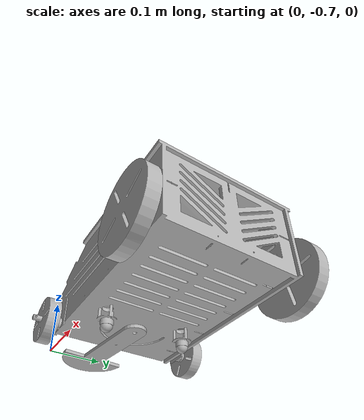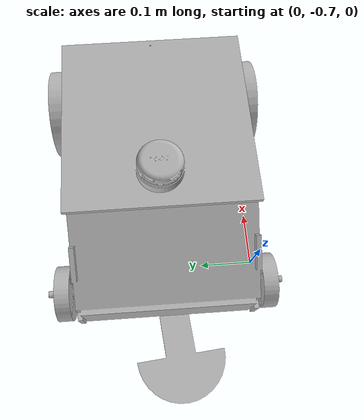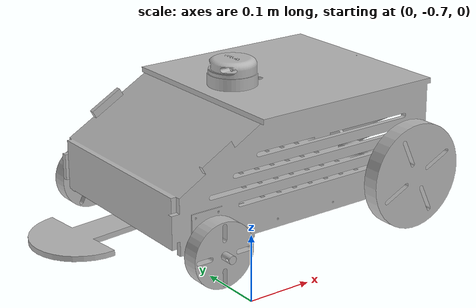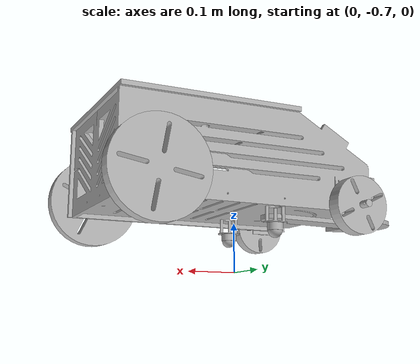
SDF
<?xml version='1.0'?>
<sdf version='1.7'>
  <model name='metal_detector_bot_v2_sdf'>
    <link name='base_link'>
      <inertial>
        <pose>0.148209 -0.523868 0.162505 0 -0 0</pose>
        <mass>5.0255</mass>
        <inertia>
          <ixx>0.0257143</ixx>
          <ixy>7.30382e-07</ixy>
          <ixz>-0.00155638</ixz>
          <iyy>0.0470482</iyy>
          <iyz>2.02368e-08</iyz>
          <izz>0.0653536</izz>
        </inertia>
      </inertial>
      <self_collide>0</self_collide>
      <enable_wind>0</enable_wind>
      <kinematic>0</kinematic>
      <pose>0 0 0 0 -0 0</pose>
      <visual name='base_link_visual'>
        <pose>0 0 0 0 -0 0</pose>
        <geometry>
          <mesh>
            <scale>1 1 1</scale>
            <uri>/home/drbilal/catkin_ws_make/src/metal_detector_bot_v2/meshes/base_link.STL</uri>
          </mesh>
        </geometry>
        <material>
          <shader type='pixel'/>
        </material>
        <transparency>0</transparency>
        <cast_shadows>1</cast_shadows>
      </visual>
      <collision name='base_link_collision'>
        <laser_retro>0</laser_retro>
        <max_contacts>10</max_contacts>
        <pose>0 0 0 0 -0 0</pose>
        <geometry>
          <mesh>
            <uri>/home/drbilal/catkin_ws_make/src/metal_detector_bot_v2/meshes/base_link.STL</uri>
            <scale>1 1 1</scale>
          </mesh>
        </geometry>
        <surface>
          <friction>
            <ode>
              <mu>1</mu>
              <mu2>1</mu2>
              <fdir1>0 0 0</fdir1>
              <slip1>0</slip1>
              <slip2>0</slip2>
            </ode>
            <torsional>
              <coefficient>1</coefficient>
              <patch_radius>0</patch_radius>
              <surface_radius>0</surface_radius>
              <use_patch_radius>1</use_patch_radius>
              <ode>
                <slip>0</slip>
              </ode>
            </torsional>
          </friction>
          <bounce>
            <restitution_coefficient>0</restitution_coefficient>
            <threshold>1e+06</threshold>
          </bounce>
          <contact>
            <collide_without_contact>0</collide_without_contact>
            <collide_without_contact_bitmask>1</collide_without_contact_bitmask>
            <collide_bitmask>1</collide_bitmask>
            <ode>
              <soft_cfm>0</soft_cfm>
              <soft_erp>0.2</soft_erp>
              <kp>1e+13</kp>
              <kd>1</kd>
              <max_vel>0.01</max_vel>
              <min_depth>0</min_depth>
            </ode>
            <bullet>
              <split_impulse>1</split_impulse>
              <split_impulse_penetration_threshold>-0.01</split_impulse_penetration_threshold>
              <soft_cfm>0</soft_cfm>
              <soft_erp>0.2</soft_erp>
              <kp>1e+13</kp>
              <kd>1</kd>
            </bullet>
          </contact>
        </surface>
      </collision>
    </link>
    <link name='Arm_link'>
      <pose>0.191124 -0.523792 0.128285 1.57015 -0.006896 0.093846</pose>
      <inertial>
        <pose>-0.3269 -0.038167 -0.01753 0 -0 0</pose>
        <mass>0.180271</mass>
        <inertia>
          <ixx>0.000140221</ixx>
          <ixy>2.20204e-08</ixy>
          <ixz>2.32575e-14</ixz>
          <iyy>0.00124415</iyy>
          <iyz>2.59649e-10</iyz>
          <izz>0.00110585</izz>
        </inertia>
      </inertial>
      <self_collide>0</self_collide>
      <enable_wind>0</enable_wind>
      <kinematic>0</kinematic>
      <visual name='Arm_link_visual'>
        <pose>0 0 0 0 -0 0</pose>
        <geometry>
          <mesh>
            <scale>1 1 1</scale>
            <uri>/home/drbilal/catkin_ws_make/src/metal_detector_bot_v2/meshes/Arm_link.STL</uri>
          </mesh>
        </geometry>
        <material>
          <shader type='pixel'/>
        </material>
        <transparency>0</transparency>
        <cast_shadows>1</cast_shadows>
      </visual>
      <collision name='Arm_link_collision'>
        <laser_retro>0</laser_retro>
        <max_contacts>10</max_contacts>
        <pose>0 0 0 0 -0 0</pose>
        <geometry>
          <mesh>
            <uri>/home/drbilal/catkin_ws_make/src/metal_detector_bot_v2/meshes/Arm_link.STL</uri>
            <scale>1 1 1</scale>
          </mesh>
        </geometry>
        <surface>
          <friction>
            <ode>
              <mu>1</mu>
              <mu2>1</mu2>
              <fdir1>0 0 0</fdir1>
              <slip1>0</slip1>
              <slip2>0</slip2>
            </ode>
            <torsional>
              <coefficient>1</coefficient>
              <patch_radius>0</patch_radius>
              <surface_radius>0</surface_radius>
              <use_patch_radius>1</use_patch_radius>
              <ode>
                <slip>0</slip>
              </ode>
            </torsional>
          </friction>
          <bounce>
            <restitution_coefficient>0</restitution_coefficient>
            <threshold>1e+06</threshold>
          </bounce>
          <contact>
            <collide_without_contact>0</collide_without_contact>
            <collide_without_contact_bitmask>1</collide_without_contact_bitmask>
            <collide_bitmask>1</collide_bitmask>
            <ode>
              <soft_cfm>0</soft_cfm>
              <soft_erp>0.2</soft_erp>
              <kp>1e+13</kp>
              <kd>1</kd>
              <max_vel>0.01</max_vel>
              <min_depth>0</min_depth>
            </ode>
            <bullet>
              <split_impulse>1</split_impulse>
              <split_impulse_penetration_threshold>-0.01</split_impulse_penetration_threshold>
              <soft_cfm>0</soft_cfm>
              <soft_erp>0.2</soft_erp>
              <kp>1e+13</kp>
              <kd>1</kd>
            </bullet>
          </contact>
        </surface>
      </collision>
    </link>
    <link name='Back_left_wheel_link'>
      <pose>0.481775 -0.674442 0.165298 1.5708 -0 0</pose>
      <inertial>
        <pose>-0.186777 -0.04347 0.026259 0 -0 0</pose>
        <mass>0.498306</mass>
        <inertia>
          <ixx>0.000864069</ixx>
          <ixy>-9.92358e-20</ixy>
          <ixz>3.11691e-15</ixz>
          <iyy>0.000864069</iyy>
          <iyz>1.48206e-20</iyz>
          <izz>0.00167127</izz>
        </inertia>
      </inertial>
      <self_collide>0</self_collide>
      <enable_wind>0</enable_wind>
      <kinematic>0</kinematic>
      <visual name='Back_left_wheel_link_visual'>
        <pose>0 0 0 0 -0 0</pose>
        <geometry>
          <mesh>
            <scale>1 1 1</scale>
            <uri>/home/drbilal/catkin_ws_make/src/metal_detector_bot_v2/meshes/Back_left_wheel_link.STL</uri>
          </mesh>
        </geometry>
        <material>
          <shader type='pixel'/>
        </material>
        <transparency>0</transparency>
        <cast_shadows>1</cast_shadows>
      </visual>
      <collision name='Back_left_wheel_link_collision'>
        <laser_retro>0</laser_retro>
        <max_contacts>10</max_contacts>
        <pose>0 0 0 0 -0 0</pose>
        <geometry>
          <mesh>
            <uri>/home/drbilal/catkin_ws_make/src/metal_detector_bot_v2/meshes/Back_left_wheel_link.STL</uri>
            <scale>1 1 1</scale>
          </mesh>
        </geometry>
        <surface>
          <friction>
            <ode>
              <mu>1</mu>
              <mu2>1</mu2>
              <fdir1>0 0 0</fdir1>
              <slip1>0</slip1>
              <slip2>0</slip2>
            </ode>
            <torsional>
              <coefficient>1</coefficient>
              <patch_radius>0</patch_radius>
              <surface_radius>0</surface_radius>
              <use_patch_radius>1</use_patch_radius>
              <ode>
                <slip>0</slip>
              </ode>
            </torsional>
          </friction>
          <bounce>
            <restitution_coefficient>0</restitution_coefficient>
            <threshold>1e+06</threshold>
          </bounce>
          <contact>
            <collide_without_contact>0</collide_without_contact>
            <collide_without_contact_bitmask>1</collide_without_contact_bitmask>
            <collide_bitmask>1</collide_bitmask>
            <ode>
              <soft_cfm>0</soft_cfm>
              <soft_erp>0.2</soft_erp>
              <kp>1e+13</kp>
              <kd>1</kd>
              <max_vel>0.01</max_vel>
              <min_depth>0</min_depth>
            </ode>
            <bullet>
              <split_impulse>1</split_impulse>
              <split_impulse_penetration_threshold>-0.01</split_impulse_penetration_threshold>
              <soft_cfm>0</soft_cfm>
              <soft_erp>0.2</soft_erp>
              <kp>1e+13</kp>
              <kd>1</kd>
            </bullet>
          </contact>
        </surface>
      </collision>
    </link>
    <link name='Back_right_wheel_link'>
      <pose>0.481775 -0.333992 0.165298 1.5708 -1.39626 3.14159</pose>
      <inertial>
        <pose>-0.010377 -0.191488 -0.012891 0 -0 0</pose>
        <mass>0.498306</mass>
        <inertia>
          <ixx>0.000864069</ixx>
          <ixy>0</ixy>
          <ixz>5.41012e-16</ixz>
          <iyy>0.000864069</iyy>
          <iyz>-3.06955e-15</iyz>
          <izz>0.00167127</izz>
        </inertia>
      </inertial>
      <self_collide>0</self_collide>
      <enable_wind>0</enable_wind>
      <kinematic>0</kinematic>
      <visual name='Back_right_wheel_link_visual'>
        <pose>0 0 0 0 -0 0</pose>
        <geometry>
          <mesh>
            <scale>1 1 1</scale>
            <uri>/home/drbilal/catkin_ws_make/src/metal_detector_bot_v2/meshes/Back_right_wheel_link.STL</uri>
          </mesh>
        </geometry>
        <material>
          <shader type='pixel'/>
        </material>
        <transparency>0</transparency>
        <cast_shadows>1</cast_shadows>
      </visual>
      <collision name='Back_right_wheel_link_collision'>
        <laser_retro>0</laser_retro>
        <max_contacts>10</max_contacts>
        <pose>0 0 0 0 -0 0</pose>
        <geometry>
          <mesh>
            <uri>/home/drbilal/catkin_ws_make/src/metal_detector_bot_v2/meshes/Back_right_wheel_link.STL</uri>
            <scale>1 1 1</scale>
          </mesh>
        </geometry>
        <surface>
          <friction>
            <ode>
              <mu>1</mu>
              <mu2>1</mu2>
              <fdir1>0 0 0</fdir1>
              <slip1>0</slip1>
              <slip2>0</slip2>
            </ode>
            <torsional>
              <coefficient>1</coefficient>
              <patch_radius>0</patch_radius>
              <surface_radius>0</surface_radius>
              <use_patch_radius>1</use_patch_radius>
              <ode>
                <slip>0</slip>
              </ode>
            </torsional>
          </friction>
          <bounce>
            <restitution_coefficient>0</restitution_coefficient>
            <threshold>1e+06</threshold>
          </bounce>
          <contact>
            <collide_without_contact>0</collide_without_contact>
            <collide_without_contact_bitmask>1</collide_without_contact_bitmask>
            <collide_bitmask>1</collide_bitmask>
            <ode>
              <soft_cfm>0</soft_cfm>
              <soft_erp>0.2</soft_erp>
              <kp>1e+13</kp>
              <kd>1</kd>
              <max_vel>0.01</max_vel>
              <min_depth>0</min_depth>
            </ode>
            <bullet>
              <split_impulse>1</split_impulse>
              <split_impulse_penetration_threshold>-0.01</split_impulse_penetration_threshold>
              <soft_cfm>0</soft_cfm>
              <soft_erp>0.2</soft_erp>
              <kp>1e+13</kp>
              <kd>1</kd>
            </bullet>
          </contact>
        </surface>
      </collision>
    </link>
    <link name='Ball_caster_left_link'>
      <pose>0.053437 -0.601142 0.053048 1.5708 -0 0</pose>
      <inertial>
        <pose>-0 0 0.0125 0 -0 0</pose>
        <mass>0.00818123</mass>
        <inertia>
          <ixx>5.11327e-07</ixx>
          <ixy>0</ixy>
          <ixz>-4.77928e-55</ixz>
          <iyy>5.11327e-07</iyy>
          <iyz>-1.06121e-70</iyz>
          <izz>5.11327e-07</izz>
        </inertia>
      </inertial>
      <self_collide>0</self_collide>
      <enable_wind>0</enable_wind>
      <kinematic>0</kinematic>
      <visual name='Ball_caster_left_link_visual'>
        <pose>0 0 0 0 -0 0</pose>
        <geometry>
          <mesh>
            <scale>1 1 1</scale>
            <uri>/home/drbilal/catkin_ws_make/src/metal_detector_bot_v2/meshes/Ball_caster_left_link.STL</uri>
          </mesh>
        </geometry>
        <material>
          <shader type='pixel'/>
        </material>
        <transparency>0</transparency>
        <cast_shadows>1</cast_shadows>
      </visual>
      <collision name='Ball_caster_left_link_collision'>
        <laser_retro>0</laser_retro>
        <max_contacts>10</max_contacts>
        <pose>0 0 0 0 -0 0</pose>
        <geometry>
          <mesh>
            <uri>/home/drbilal/catkin_ws_make/src/metal_detector_bot_v2/meshes/Ball_caster_left_link.STL</uri>
            <scale>1 1 1</scale>
          </mesh>
        </geometry>
        <surface>
          <friction>
            <ode>
              <mu>1</mu>
              <mu2>1</mu2>
              <fdir1>0 0 0</fdir1>
              <slip1>0</slip1>
              <slip2>0</slip2>
            </ode>
            <torsional>
              <coefficient>1</coefficient>
              <patch_radius>0</patch_radius>
              <surface_radius>0</surface_radius>
              <use_patch_radius>1</use_patch_radius>
              <ode>
                <slip>0</slip>
              </ode>
            </torsional>
          </friction>
          <bounce>
            <restitution_coefficient>0</restitution_coefficient>
            <threshold>1e+06</threshold>
          </bounce>
          <contact>
            <collide_without_contact>0</collide_without_contact>
            <collide_without_contact_bitmask>1</collide_without_contact_bitmask>
            <collide_bitmask>1</collide_bitmask>
            <ode>
              <soft_cfm>0</soft_cfm>
              <soft_erp>0.2</soft_erp>
              <kp>1e+13</kp>
              <kd>1</kd>
              <max_vel>0.01</max_vel>
              <min_depth>0</min_depth>
            </ode>
            <bullet>
              <split_impulse>1</split_impulse>
              <split_impulse_penetration_threshold>-0.01</split_impulse_penetration_threshold>
              <soft_cfm>0</soft_cfm>
              <soft_erp>0.2</soft_erp>
              <kp>1e+13</kp>
              <kd>1</kd>
            </bullet>
          </contact>
        </surface>
      </collision>
    </link>
    <link name='Ball_caster_right_link'>
      <pose>0.053437 -0.413594 0.053048 2.65923 0.176278 0.344277</pose>
      <inertial>
        <pose>-0.006761 0.01641 0.009952 0 -0 0</pose>
        <mass>0.00818123</mass>
        <inertia>
          <ixx>5.11327e-07</ixx>
          <ixy>-5.29396e-23</ixy>
          <ixz>-2.64698e-23</ixz>
          <iyy>5.11327e-07</iyy>
          <iyz>3.97047e-23</iyz>
          <izz>5.11327e-07</izz>
        </inertia>
      </inertial>
      <self_collide>0</self_collide>
      <enable_wind>0</enable_wind>
      <kinematic>0</kinematic>
      <visual name='Ball_caster_right_link_visual'>
        <pose>0 0 0 0 -0 0</pose>
        <geometry>
          <mesh>
            <scale>1 1 1</scale>
            <uri>/home/drbilal/catkin_ws_make/src/metal_detector_bot_v2/meshes/Ball_caster_right_link.STL</uri>
          </mesh>
        </geometry>
        <material>
          <shader type='pixel'/>
        </material>
        <transparency>0</transparency>
        <cast_shadows>1</cast_shadows>
      </visual>
      <collision name='Ball_caster_right_link_collision'>
        <laser_retro>0</laser_retro>
        <max_contacts>10</max_contacts>
        <pose>0 0 0 0 -0 0</pose>
        <geometry>
          <mesh>
            <uri>/home/drbilal/catkin_ws_make/src/metal_detector_bot_v2/meshes/Ball_caster_right_link.STL</uri>
            <scale>1 1 1</scale>
          </mesh>
        </geometry>
        <surface>
          <friction>
            <ode>
              <mu>1</mu>
              <mu2>1</mu2>
              <fdir1>0 0 0</fdir1>
              <slip1>0</slip1>
              <slip2>0</slip2>
            </ode>
            <torsional>
              <coefficient>1</coefficient>
              <patch_radius>0</patch_radius>
              <surface_radius>0</surface_radius>
              <use_patch_radius>1</use_patch_radius>
              <ode>
                <slip>0</slip>
              </ode>
            </torsional>
          </friction>
          <bounce>
            <restitution_coefficient>0</restitution_coefficient>
            <threshold>1e+06</threshold>
          </bounce>
          <contact>
            <collide_without_contact>0</collide_without_contact>
            <collide_without_contact_bitmask>1</collide_without_contact_bitmask>
            <collide_bitmask>1</collide_bitmask>
            <ode>
              <soft_cfm>0</soft_cfm>
              <soft_erp>0.2</soft_erp>
              <kp>1e+13</kp>
              <kd>1</kd>
              <max_vel>0.01</max_vel>
              <min_depth>0</min_depth>
            </ode>
            <bullet>
              <split_impulse>1</split_impulse>
              <split_impulse_penetration_threshold>-0.01</split_impulse_penetration_threshold>
              <soft_cfm>0</soft_cfm>
              <soft_erp>0.2</soft_erp>
              <kp>1e+13</kp>
              <kd>1</kd>
            </bullet>
          </contact>
        </surface>
      </collision>
    </link>
    <link name='Front_left_wheel_link'>
      <pose>0.132512 -0.674442 0.132278 1.5708 -0 0</pose>
      <inertial>
        <pose>-0.186784 -0.042463 0.026002 0 -0 0</pose>
        <mass>0.168705</mass>
        <inertia>
          <ixx>0.000108603</ixx>
          <ixy>-1.8031e-21</ixy>
          <ixz>3.39276e-16</ixz>
          <iyy>0.000108603</iyy>
          <iyz>6.80935e-21</iyz>
          <izz>0.000196465</izz>
        </inertia>
      </inertial>
      <self_collide>0</self_collide>
      <enable_wind>0</enable_wind>
      <kinematic>0</kinematic>
      <visual name='Front_left_wheel_link_visual'>
        <pose>0 0 0 0 -0 0</pose>
        <geometry>
          <mesh>
            <scale>1 1 1</scale>
            <uri>/home/drbilal/catkin_ws_make/src/metal_detector_bot_v2/meshes/Front_left_wheel_link.STL</uri>
          </mesh>
        </geometry>
        <material>
          <shader type='pixel'/>
        </material>
        <transparency>0</transparency>
        <cast_shadows>1</cast_shadows>
      </visual>
      <collision name='Front_left_wheel_link_collision'>
        <laser_retro>0</laser_retro>
        <max_contacts>10</max_contacts>
        <pose>0 0 0 0 -0 0</pose>
        <geometry>
          <mesh>
            <uri>/home/drbilal/catkin_ws_make/src/metal_detector_bot_v2/meshes/Front_left_wheel_link.STL</uri>
            <scale>1 1 1</scale>
          </mesh>
        </geometry>
        <surface>
          <friction>
            <ode>
              <mu>1</mu>
              <mu2>1</mu2>
              <fdir1>0 0 0</fdir1>
              <slip1>0</slip1>
              <slip2>0</slip2>
            </ode>
            <torsional>
              <coefficient>1</coefficient>
              <patch_radius>0</patch_radius>
              <surface_radius>0</surface_radius>
              <use_patch_radius>1</use_patch_radius>
              <ode>
                <slip>0</slip>
              </ode>
            </torsional>
          </friction>
          <bounce>
            <restitution_coefficient>0</restitution_coefficient>
            <threshold>1e+06</threshold>
          </bounce>
          <contact>
            <collide_without_contact>0</collide_without_contact>
            <collide_without_contact_bitmask>1</collide_without_contact_bitmask>
            <collide_bitmask>1</collide_bitmask>
            <ode>
              <soft_cfm>0</soft_cfm>
              <soft_erp>0.2</soft_erp>
              <kp>1e+13</kp>
              <kd>1</kd>
              <max_vel>0.01</max_vel>
              <min_depth>0</min_depth>
            </ode>
            <bullet>
              <split_impulse>1</split_impulse>
              <split_impulse_penetration_threshold>-0.01</split_impulse_penetration_threshold>
              <soft_cfm>0</soft_cfm>
              <soft_erp>0.2</soft_erp>
              <kp>1e+13</kp>
              <kd>1</kd>
            </bullet>
          </contact>
        </surface>
      </collision>
    </link>
    <link name='Front_right_wheel_link'>
      <pose>0.132512 -0.333992 0.132278 1.5708 1.11013 -3.14159</pose>
      <inertial>
        <pose>0.121071 0.148437 -0.013148 0 -0 0</pose>
        <mass>0.168705</mass>
        <inertia>
          <ixx>0.000108603</ixx>
          <ixy>1.35525e-20</ixy>
          <ixz>1.50877e-16</ixz>
          <iyy>0.000108603</iyy>
          <iyz>3.03906e-16</iyz>
          <izz>0.000196465</izz>
        </inertia>
      </inertial>
      <self_collide>0</self_collide>
      <enable_wind>0</enable_wind>
      <kinematic>0</kinematic>
      <visual name='Front_right_wheel_link_visual'>
        <pose>0 0 0 0 -0 0</pose>
        <geometry>
          <mesh>
            <scale>1 1 1</scale>
            <uri>/home/drbilal/catkin_ws_make/src/metal_detector_bot_v2/meshes/Front_right_wheel_link.STL</uri>
          </mesh>
        </geometry>
        <material>
          <shader type='pixel'/>
        </material>
        <transparency>0</transparency>
        <cast_shadows>1</cast_shadows>
      </visual>
      <collision name='Front_right_wheel_link_collision'>
        <laser_retro>0</laser_retro>
        <max_contacts>10</max_contacts>
        <pose>0 0 0 0 -0 0</pose>
        <geometry>
          <mesh>
            <uri>/home/drbilal/catkin_ws_make/src/metal_detector_bot_v2/meshes/Front_right_wheel_link.STL</uri>
            <scale>1 1 1</scale>
          </mesh>
        </geometry>
        <surface>
          <friction>
            <ode>
              <mu>1</mu>
              <mu2>1</mu2>
              <fdir1>0 0 0</fdir1>
              <slip1>0</slip1>
              <slip2>0</slip2>
            </ode>
            <torsional>
              <coefficient>1</coefficient>
              <patch_radius>0</patch_radius>
              <surface_radius>0</surface_radius>
              <use_patch_radius>1</use_patch_radius>
              <ode>
                <slip>0</slip>
              </ode>
            </torsional>
          </friction>
          <bounce>
            <restitution_coefficient>0</restitution_coefficient>
            <threshold>1e+06</threshold>
          </bounce>
          <contact>
            <collide_without_contact>0</collide_without_contact>
            <collide_without_contact_bitmask>1</collide_without_contact_bitmask>
            <collide_bitmask>1</collide_bitmask>
            <ode>
              <soft_cfm>0</soft_cfm>
              <soft_erp>0.2</soft_erp>
              <kp>1e+13</kp>
              <kd>1</kd>
              <max_vel>0.01</max_vel>
              <min_depth>0</min_depth>
            </ode>
            <bullet>
              <split_impulse>1</split_impulse>
              <split_impulse_penetration_threshold>-0.01</split_impulse_penetration_threshold>
              <soft_cfm>0</soft_cfm>
              <soft_erp>0.2</soft_erp>
              <kp>1e+13</kp>
              <kd>1</kd>
            </bullet>
          </contact>
        </surface>
      </collision>
    </link>
    <link name='Lidar_link'>
      <pose>0.283226 -0.523792 0.315928 1.57772 -0.000188 -1.54365</pose>
      <inertial>
        <pose>-0.005147 -0.029415 0.184124 0 -0 0</pose>
        <mass>0.0713754</mass>
        <inertia>
          <ixx>2.28587e-05</ixx>
          <ixy>-6.48859e-09</ixy>
          <ixz>5.03939e-08</ixz>
          <iyy>4.25289e-05</iyy>
          <iyz>-3.26178e-07</iyz>
          <izz>2.32778e-05</izz>
        </inertia>
      </inertial>
      <self_collide>0</self_collide>
      <enable_wind>0</enable_wind>
      <kinematic>0</kinematic>
      <visual name='Lidar_link_visual'>
        <pose>0 0 0 0 -0 0</pose>
        <geometry>
          <mesh>
            <scale>1 1 1</scale>
            <uri>/home/drbilal/catkin_ws_make/src/metal_detector_bot_v2/meshes/Lidar_link.STL</uri>
          </mesh>
        </geometry>
        <material>
          <shader type='pixel'/>
        </material>
        <transparency>0</transparency>
        <cast_shadows>1</cast_shadows>
      </visual>
      <collision name='Lidar_link_collision'>
        <laser_retro>0</laser_retro>
        <max_contacts>10</max_contacts>
        <pose>0 0 0 0 -0 0</pose>
        <geometry>
          <mesh>
            <uri>/home/drbilal/catkin_ws_make/src/metal_detector_bot_v2/meshes/Lidar_link.STL</uri>
            <scale>1 1 1</scale>
          </mesh>
        </geometry>
        <surface>
          <friction>
            <ode>
              <mu>1</mu>
              <mu2>1</mu2>
              <fdir1>0 0 0</fdir1>
              <slip1>0</slip1>
              <slip2>0</slip2>
            </ode>
            <torsional>
              <coefficient>1</coefficient>
              <patch_radius>0</patch_radius>
              <surface_radius>0</surface_radius>
              <use_patch_radius>1</use_patch_radius>
              <ode>
                <slip>0</slip>
              </ode>
            </torsional>
          </friction>
          <bounce>
            <restitution_coefficient>0</restitution_coefficient>
            <threshold>1e+06</threshold>
          </bounce>
          <contact>
            <collide_without_contact>0</collide_without_contact>
            <collide_without_contact_bitmask>1</collide_without_contact_bitmask>
            <collide_bitmask>1</collide_bitmask>
            <ode>
              <soft_cfm>0</soft_cfm>
              <soft_erp>0.2</soft_erp>
              <kp>1e+13</kp>
              <kd>1</kd>
              <max_vel>0.01</max_vel>
              <min_depth>0</min_depth>
            </ode>
            <bullet>
              <split_impulse>1</split_impulse>
              <split_impulse_penetration_threshold>-0.01</split_impulse_penetration_threshold>
              <soft_cfm>0</soft_cfm>
              <soft_erp>0.2</soft_erp>
              <kp>1e+13</kp>
              <kd>1</kd>
            </bullet>
          </contact>
        </surface>
      </collision>
    </link>
    <joint name='Arm_joint' type='revolute'>
      <parent>base_link</parent>
      <child>Arm_link</child>
      <pose>-0 0 0 0 -0 0</pose>
      <axis>
        <xyz>0 1 0</xyz>
        <limit>
          <lower>0</lower>
          <upper>0</upper>
          <effort>0</effort>
          <velocity>0</velocity>
        </limit>
        <dynamics>
          <spring_reference>0</spring_reference>
          <spring_stiffness>0</spring_stiffness>
          <damping>0</damping>
          <friction>0</friction>
        </dynamics>
      </axis>
      <physics>
        <ode>
          <limit>
            <cfm>0</cfm>
            <erp>0.2</erp>
          </limit>
          <suspension>
            <cfm>0</cfm>
            <erp>0.2</erp>
          </suspension>
        </ode>
      </physics>
    </joint>
    <joint name='Back_left_wheel_joint' type='revolute'>
      <parent>base_link</parent>
      <child>Back_left_wheel_link</child>
      <pose>0 0 0 0 -0 0</pose>
      <axis>
        <xyz>0 0 1</xyz>
        <limit>
          <lower>0</lower>
          <upper>0</upper>
          <effort>0</effort>
          <velocity>0</velocity>
        </limit>
        <dynamics>
          <spring_reference>0</spring_reference>
          <spring_stiffness>0</spring_stiffness>
          <damping>0</damping>
          <friction>0</friction>
        </dynamics>
      </axis>
      <physics>
        <ode>
          <limit>
            <cfm>0</cfm>
            <erp>0.2</erp>
          </limit>
          <suspension>
            <cfm>0</cfm>
            <erp>0.2</erp>
          </suspension>
        </ode>
      </physics>
    </joint>
    <joint name='Back_right_wheel_joint' type='revolute'>
      <parent>base_link</parent>
      <child>Back_right_wheel_link</child>
      <pose>-0 0 -0 0 -0 0</pose>
      <axis>
        <xyz>0 0 1</xyz>
        <limit>
          <lower>0</lower>
          <upper>0</upper>
          <effort>0</effort>
          <velocity>0</velocity>
        </limit>
        <dynamics>
          <spring_reference>0</spring_reference>
          <spring_stiffness>0</spring_stiffness>
          <damping>0</damping>
          <friction>0</friction>
        </dynamics>
      </axis>
      <physics>
        <ode>
          <limit>
            <cfm>0</cfm>
            <erp>0.2</erp>
          </limit>
          <suspension>
            <cfm>0</cfm>
            <erp>0.2</erp>
          </suspension>
        </ode>
      </physics>
    </joint>
    <joint name='Ball_caster_left_joint' type='revolute'>
      <parent>base_link</parent>
      <child>Ball_caster_left_link</child>
      <pose>0 -0 0 0 -0 0</pose>
      <axis>
        <xyz>0 0 1</xyz>
        <limit>
          <lower>-1e+16</lower>
          <upper>1e+16</upper>
          <effort>-1</effort>
          <velocity>-1</velocity>
        </limit>
        <dynamics>
          <spring_reference>0</spring_reference>
          <spring_stiffness>0</spring_stiffness>
          <damping>0</damping>
          <friction>0</friction>
        </dynamics>
      </axis>
      <physics>
        <ode>
          <limit>
            <cfm>0</cfm>
            <erp>0.2</erp>
          </limit>
          <suspension>
            <cfm>0</cfm>
            <erp>0.2</erp>
          </suspension>
        </ode>
      </physics>
    </joint>
    <joint name='Ball_caster_right_joint' type='revolute'>
      <parent>base_link</parent>
      <child>Ball_caster_right_link</child>
      <pose>-0 0 0 0 -0 0</pose>
      <axis>
        <xyz>0.332286 -0.806458 -0.489093</xyz>
        <limit>
          <lower>-1e+16</lower>
          <upper>1e+16</upper>
          <effort>-1</effort>
          <velocity>-1</velocity>
        </limit>
        <dynamics>
          <spring_reference>0</spring_reference>
          <spring_stiffness>0</spring_stiffness>
          <damping>0</damping>
          <friction>0</friction>
        </dynamics>
      </axis>
      <physics>
        <ode>
          <limit>
            <cfm>0</cfm>
            <erp>0.2</erp>
          </limit>
          <suspension>
            <cfm>0</cfm>
            <erp>0.2</erp>
          </suspension>
        </ode>
      </physics>
    </joint>
    <joint name='Front_left_wheel_joint' type='revolute'>
      <parent>base_link</parent>
      <child>Front_left_wheel_link</child>
      <pose>0 0 -0 0 -0 0</pose>
      <axis>
        <xyz>0 0 1</xyz>
        <limit>
          <lower>0</lower>
          <upper>0</upper>
          <effort>0</effort>
          <velocity>0</velocity>
        </limit>
        <dynamics>
          <spring_reference>0</spring_reference>
          <spring_stiffness>0</spring_stiffness>
          <damping>0</damping>
          <friction>0</friction>
        </dynamics>
      </axis>
      <physics>
        <ode>
          <limit>
            <cfm>0</cfm>
            <erp>0.2</erp>
          </limit>
          <suspension>
            <cfm>0</cfm>
            <erp>0.2</erp>
          </suspension>
        </ode>
      </physics>
    </joint>
    <joint name='Front_right_wheel_joint' type='revolute'>
      <parent>base_link</parent>
      <child>Front_right_wheel_link</child>
      <pose>0 0 0 0 -0 0</pose>
      <axis>
        <xyz>0 0 1</xyz>
        <limit>
          <lower>0</lower>
          <upper>0</upper>
          <effort>0</effort>
          <velocity>0</velocity>
        </limit>
        <dynamics>
          <spring_reference>0</spring_reference>
          <spring_stiffness>0</spring_stiffness>
          <damping>0</damping>
          <friction>0</friction>
        </dynamics>
      </axis>
      <physics>
        <ode>
          <limit>
            <cfm>0</cfm>
            <erp>0.2</erp>
          </limit>
          <suspension>
            <cfm>0</cfm>
            <erp>0.2</erp>
          </suspension>
        </ode>
      </physics>
    </joint>
    <joint name='Lidar_joint' type='revolute'>
      <parent>base_link</parent>
      <child>Lidar_link</child>
      <pose>0 0 -0 0 -0 0</pose>
      <axis>
        <xyz>0 1 0</xyz>
        <limit>
          <lower>0</lower>
          <upper>0</upper>
          <effort>0</effort>
          <velocity>0</velocity>
        </limit>
        <dynamics>
          <spring_reference>0</spring_reference>
          <spring_stiffness>0</spring_stiffness>
          <damping>0</damping>
          <friction>0</friction>
        </dynamics>
      </axis>
      <physics>
        <ode>
          <limit>
            <cfm>0</cfm>
            <erp>0.2</erp>
          </limit>
          <suspension>
            <cfm>0</cfm>
            <erp>0.2</erp>
          </suspension>
        </ode>
      </physics>
    </joint>
    <static>0</static>
    <allow_auto_disable>1</allow_auto_disable>
  </model>
</sdf>
